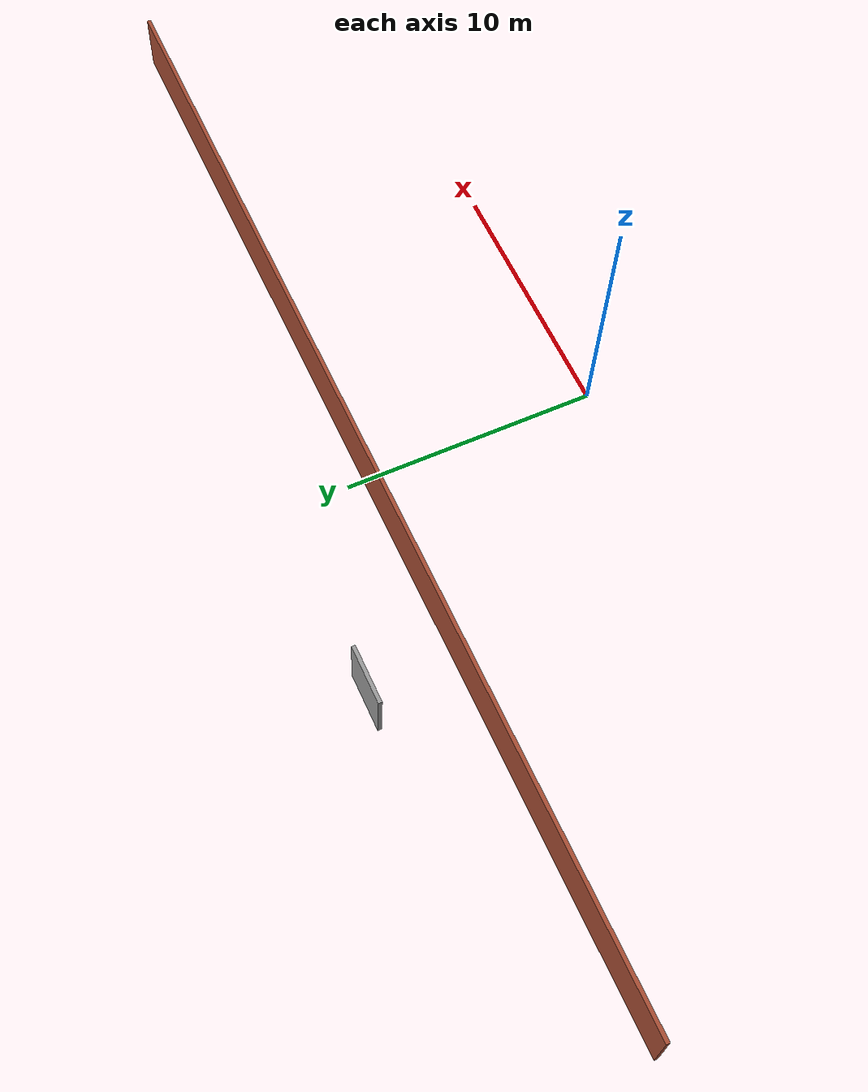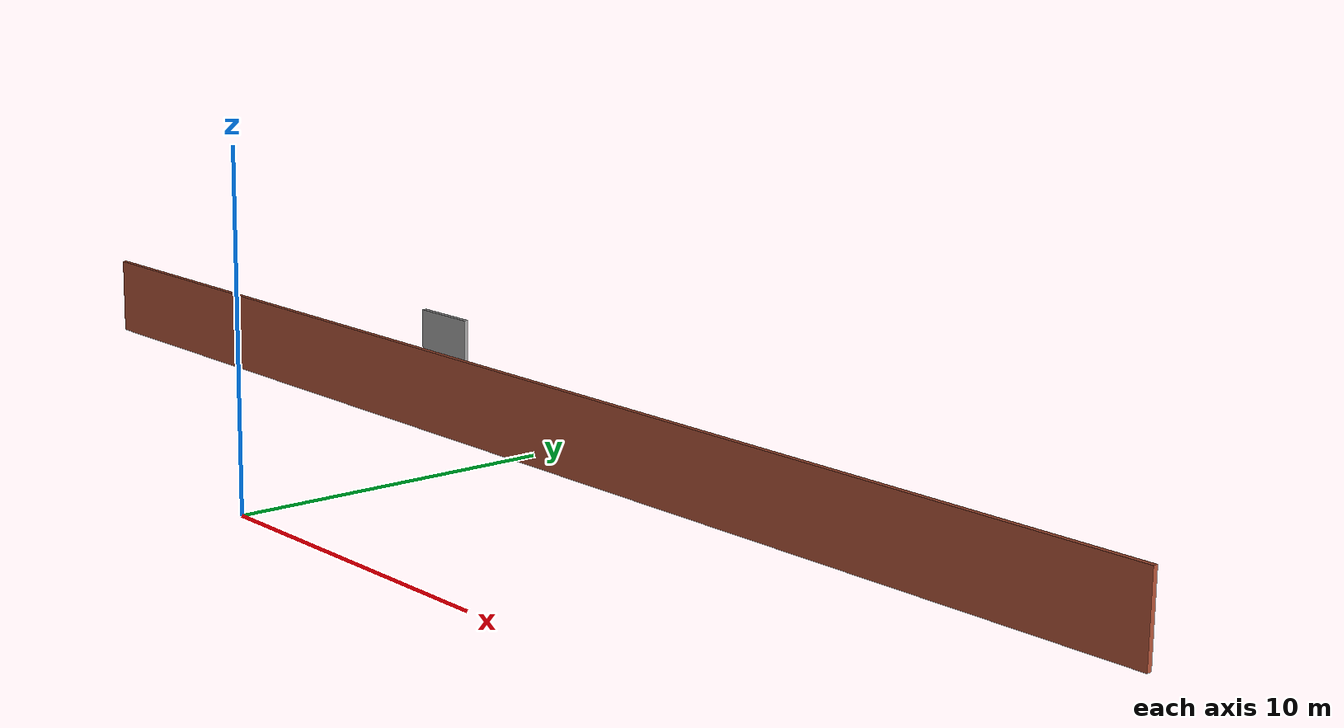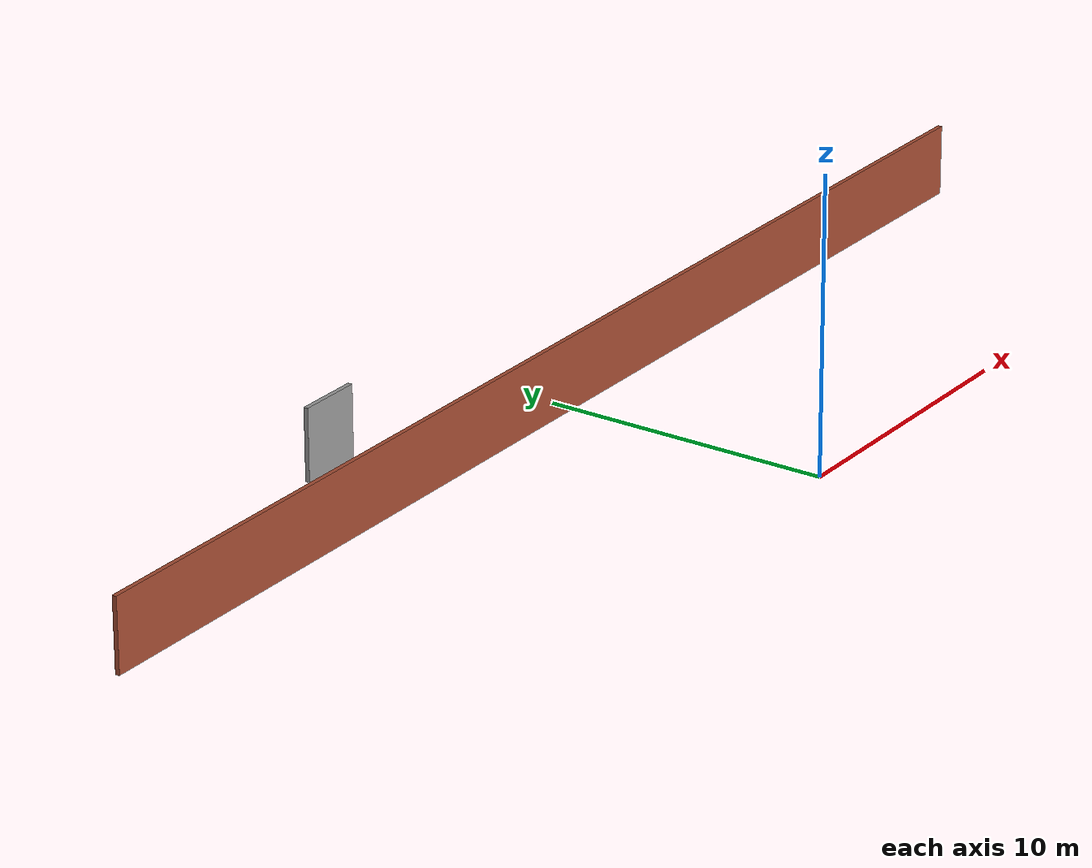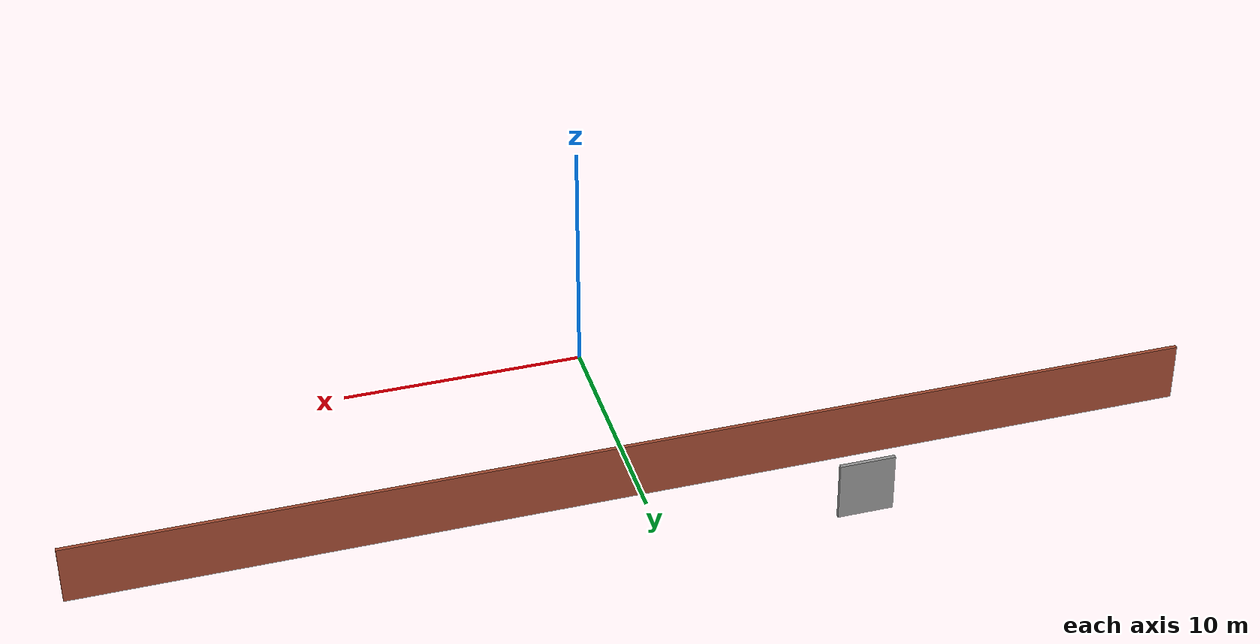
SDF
<?xml version='1.0'?>
<sdf version='1.7'>
  <model name='enclosed'>
    <pose>0.008661 6.43153 0 0 -0 0</pose>
    <link name='Wall_0'>
      <collision name='Wall_0_Collision'>
        <geometry>
          <box>
            <size>2.25 0.15 2.5</size>
          </box>
        </geometry>
        <pose>0 0 1.25 0 -0 0</pose>
      </collision>
      <visual name='Wall_0_Visual'>
        <pose>0 0 1.25 0 -0 0</pose>
        <geometry>
          <box>
            <size>2.25 0.15 2.5</size>
          </box>
        </geometry>
        <material>
          <script>
            <uri>file://media/materials/scripts/gazebo.material</uri>
            <name>Gazebo/Grey</name>
          </script>
          <ambient>1 1 1 1</ambient>
        </material>
        <meta>
          <layer>0</layer>
        </meta>
      </visual>
      <pose>-8.06593 6.35653 0 0 -0 0</pose>
    </link>
    <link name='Wall_4'>
      <collision name='Wall_4_Collision'>
        <geometry>
          <box>
            <size>45.25 0.15 2.5</size>
          </box>
        </geometry>
        <pose>0 0 1.25 0 -0 0</pose>
      </collision>
      <visual name='Wall_4_Visual'>
        <pose>0 0 1.25 0 -0 0</pose>
        <geometry>
          <box>
            <size>45.25 0.15 2.5</size>
          </box>
        </geometry>
        <material>
          <script>
            <uri>file://media/materials/scripts/gazebo.material</uri>
            <name>Gazebo/Bricks</name>
          </script>
          <ambient>1 1 1 1</ambient>
        </material>
        <meta>
          <layer>0</layer>
        </meta>
      </visual>
      <pose>-0 2.86436 0 0 -0 0</pose>
    </link>
    <static>1</static>
  </model>
</sdf>
